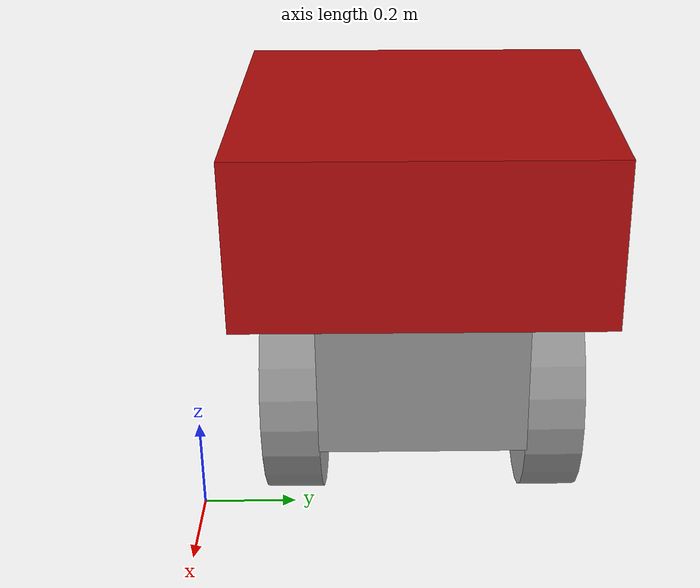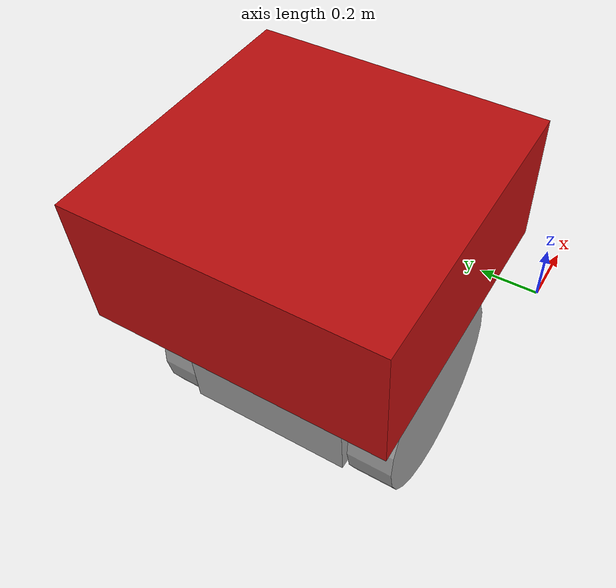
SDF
<?xml version='1.0'?>
<sdf version='1.6'>
  <model name='robo'>
    <link name='left_wheel'>
      <inertial>
        <mass>0.139839</mass>
        <inertia>
          <ixx>0.00337426</ixx>
          <ixy>0</ixy>
          <ixz>0</ixz>
          <iyy>0.00337426</iyy>
          <iyz>0</iyz>
          <izz>0.00629276</izz>
        </inertia>
        <pose frame=''>0 0 0 0 -0 0</pose>
      </inertial>
      <pose frame=''>-0.540003 0.170784 0.027273 1.5707 -0 0</pose>
      <gravity>1</gravity>
      <self_collide>0</self_collide>
      <kinematic>0</kinematic>
      <enable_wind>0</enable_wind>
      <visual name='visual'>
        <pose frame=''>0 0 0 0 -0 0</pose>
        <geometry>
          <cylinder>
            <radius>0.3</radius>
            <length>0.13984</length>
          </cylinder>
        </geometry>
        <material>
          <lighting>1</lighting>
          <script>
            <uri>file://media/materials/scripts/gazebo.material</uri>
            <name>Gazebo/Grey</name>
          </script>
          <shader type='pixel'>
            <normal_map>__default__</normal_map>
          </shader>
          <ambient>0 0 0 1</ambient>
          <diffuse>0.7 0.7 0.7 1</diffuse>
          <specular>0.01 0.01 0.01 1</specular>
          <emissive>0 0 0 1</emissive>
        </material>
        <transparency>0</transparency>
        <cast_shadows>1</cast_shadows>
      </visual>
      <collision name='collision'>
        <laser_retro>0</laser_retro>
        <max_contacts>10</max_contacts>
        <pose frame=''>0 0 0 0 -0 0</pose>
        <geometry>
          <cylinder>
            <radius>0.3</radius>
            <length>0.13984</length>
          </cylinder>
        </geometry>
        <surface>
          <friction>
            <ode>
              <mu>1</mu>
              <mu2>1</mu2>
              <fdir1>0 0 0</fdir1>
              <slip1>0</slip1>
              <slip2>0</slip2>
            </ode>
            <torsional>
              <coefficient>1</coefficient>
              <patch_radius>0</patch_radius>
              <surface_radius>0</surface_radius>
              <use_patch_radius>1</use_patch_radius>
              <ode>
                <slip>0</slip>
              </ode>
            </torsional>
          </friction>
          <bounce>
            <restitution_coefficient>0</restitution_coefficient>
            <threshold>1e+06</threshold>
          </bounce>
          <contact>
            <collide_without_contact>0</collide_without_contact>
            <collide_without_contact_bitmask>1</collide_without_contact_bitmask>
            <collide_bitmask>1</collide_bitmask>
            <ode>
              <soft_cfm>0</soft_cfm>
              <soft_erp>0.2</soft_erp>
              <kp>1e+13</kp>
              <kd>1</kd>
              <max_vel>0.01</max_vel>
              <min_depth>0</min_depth>
            </ode>
            <bullet>
              <split_impulse>1</split_impulse>
              <split_impulse_penetration_threshold>-0.01</split_impulse_penetration_threshold>
              <soft_cfm>0</soft_cfm>
              <soft_erp>0.2</soft_erp>
              <kp>1e+13</kp>
              <kd>1</kd>
            </bullet>
          </contact>
        </surface>
      </collision>
    </link>
    <link name='body'>
      <inertial>
        <mass>0.0977333</mass>
        <inertia>
          <ixx>0.0034523</ixx>
          <ixy>0</ixy>
          <ixz>0</ixz>
          <iyy>0.00486474</iyy>
          <iyz>0</iyz>
          <izz>0.00546961</izz>
        </inertia>
        <pose frame=''>0 0 0 0 -0 0</pose>
      </inertial>
      <pose frame=''>-0.540003 0.490271 0.194467 0 -0 0</pose>
      <gravity>1</gravity>
      <self_collide>0</self_collide>
      <kinematic>0</kinematic>
      <enable_wind>0</enable_wind>
      <visual name='visual'>
        <pose frame=''>0 0 0 0 -0 0</pose>
        <geometry>
          <box>
            <size>0.65 0.499076 0.418101</size>
          </box>
        </geometry>
        <material>
          <lighting>1</lighting>
          <script>
            <uri>file://media/materials/scripts/gazebo.material</uri>
            <name>Gazebo/Grey</name>
          </script>
          <shader type='pixel'>
            <normal_map>__default__</normal_map>
          </shader>
          <ambient>0.5 0.5 0.5 1</ambient>
          <diffuse>0.7 0.7 0.7 1</diffuse>
          <specular>0.01 0.01 0.01 1</specular>
          <emissive>0 0 0 1</emissive>
        </material>
        <transparency>0</transparency>
        <cast_shadows>1</cast_shadows>
      </visual>
      <collision name='collision'>
        <laser_retro>0</laser_retro>
        <max_contacts>10</max_contacts>
        <pose frame=''>0 0 0 0 -0 0</pose>
        <geometry>
          <box>
            <size>0.65 0.499076 0.418101</size>
          </box>
        </geometry>
        <surface>
          <friction>
            <ode>
              <mu>1</mu>
              <mu2>1</mu2>
              <fdir1>0 0 0</fdir1>
              <slip1>0</slip1>
              <slip2>0</slip2>
            </ode>
            <torsional>
              <coefficient>1</coefficient>
              <patch_radius>0</patch_radius>
              <surface_radius>0</surface_radius>
              <use_patch_radius>1</use_patch_radius>
              <ode>
                <slip>0</slip>
              </ode>
            </torsional>
          </friction>
          <bounce>
            <restitution_coefficient>0</restitution_coefficient>
            <threshold>1e+06</threshold>
          </bounce>
          <contact>
            <collide_without_contact>0</collide_without_contact>
            <collide_without_contact_bitmask>1</collide_without_contact_bitmask>
            <collide_bitmask>1</collide_bitmask>
            <ode>
              <soft_cfm>0</soft_cfm>
              <soft_erp>0.2</soft_erp>
              <kp>1e+13</kp>
              <kd>1</kd>
              <max_vel>0.01</max_vel>
              <min_depth>0</min_depth>
            </ode>
            <bullet>
              <split_impulse>1</split_impulse>
              <split_impulse_penetration_threshold>-0.01</split_impulse_penetration_threshold>
              <soft_cfm>0</soft_cfm>
              <soft_erp>0.2</soft_erp>
              <kp>1e+13</kp>
              <kd>1</kd>
            </bullet>
          </contact>
        </surface>
      </collision>
    </link>
    <link name='head'>
      <inertial>
        <mass>0.232242</mass>
        <inertia>
          <ixx>0.0165183</ixx>
          <ixy>0</ixy>
          <ixz>0</ixz>
          <iyy>0.0159662</iyy>
          <iyz>0</iyz>
          <izz>0.0286809</izz>
        </inertia>
        <pose frame=''>0 0 0 0 -0 0</pose>
      </inertial>
      <pose frame=''>-0.540003 0.490271 0.560255 0 -0 0</pose>
      <self_collide>0</self_collide>
      <enable_wind>0</enable_wind>
      <kinematic>0</kinematic>
      <visual name='visual'>
        <pose frame=''>0 0 0 0 -0 0</pose>
        <geometry>
          <box>
            <size>0.852475 0.869044 0.4</size>
          </box>
        </geometry>
        <material>
          <lighting>1</lighting>
          <script>
            <uri>file://media/materials/scripts/gazebo.material</uri>
            <name>Gazebo/Grey</name>
          </script>
          <ambient>0.745098 0.05098 0.05098 1</ambient>
          <shader type='pixel'/>
        </material>
        <transparency>0</transparency>
        <cast_shadows>1</cast_shadows>
      </visual>
      <collision name='collision'>
        <laser_retro>0</laser_retro>
        <max_contacts>10</max_contacts>
        <pose frame=''>0 0 0 0 -0 0</pose>
        <geometry>
          <box>
            <size>0.852475 0.869044 0.313476</size>
          </box>
        </geometry>
        <surface>
          <friction>
            <ode>
              <mu>1</mu>
              <mu2>1</mu2>
              <fdir1>0 0 0</fdir1>
              <slip1>0</slip1>
              <slip2>0</slip2>
            </ode>
            <torsional>
              <coefficient>1</coefficient>
              <patch_radius>0</patch_radius>
              <surface_radius>0</surface_radius>
              <use_patch_radius>1</use_patch_radius>
              <ode>
                <slip>0</slip>
              </ode>
            </torsional>
          </friction>
          <bounce>
            <restitution_coefficient>0</restitution_coefficient>
            <threshold>1e+06</threshold>
          </bounce>
          <contact>
            <collide_without_contact>0</collide_without_contact>
            <collide_without_contact_bitmask>1</collide_without_contact_bitmask>
            <collide_bitmask>1</collide_bitmask>
            <ode>
              <soft_cfm>0</soft_cfm>
              <soft_erp>0.2</soft_erp>
              <kp>1e+13</kp>
              <kd>1</kd>
              <max_vel>0.01</max_vel>
              <min_depth>0</min_depth>
            </ode>
            <bullet>
              <split_impulse>1</split_impulse>
              <split_impulse_penetration_threshold>-0.01</split_impulse_penetration_threshold>
              <soft_cfm>0</soft_cfm>
              <soft_erp>0.2</soft_erp>
              <kp>1e+13</kp>
              <kd>1</kd>
            </bullet>
          </contact>
        </surface>
      </collision>
    </link>
    <link name='right_wheel'>
      <inertial>
        <mass>0.139839</mass>
        <inertia>
          <ixx>0.00337426</ixx>
          <ixy>0</ixy>
          <ixz>0</ixz>
          <iyy>0.00337426</iyy>
          <iyz>0</iyz>
          <izz>0.00629276</izz>
        </inertia>
        <pose frame=''>0 0 0 0 -0 0</pose>
      </inertial>
      <pose frame=''>-0.540003 0.809758 0.027273 1.5707 -0 0</pose>
      <gravity>1</gravity>
      <self_collide>0</self_collide>
      <kinematic>0</kinematic>
      <enable_wind>0</enable_wind>
      <visual name='visual'>
        <pose frame=''>0 0 0 0 -0 0</pose>
        <geometry>
          <cylinder>
            <radius>0.3</radius>
            <length>0.13984</length>
          </cylinder>
        </geometry>
        <material>
          <lighting>1</lighting>
          <script>
            <uri>file://media/materials/scripts/gazebo.material</uri>
            <name>Gazebo/Grey</name>
          </script>
          <shader type='pixel'>
            <normal_map>__default__</normal_map>
          </shader>
          <ambient>0 0 0 1</ambient>
          <diffuse>0.7 0.7 0.7 1</diffuse>
          <specular>0.01 0.01 0.01 1</specular>
          <emissive>0 0 0 1</emissive>
        </material>
        <transparency>0</transparency>
        <cast_shadows>1</cast_shadows>
      </visual>
      <collision name='collision'>
        <laser_retro>0</laser_retro>
        <max_contacts>10</max_contacts>
        <pose frame=''>0 0 0 0 -0 0</pose>
        <geometry>
          <cylinder>
            <radius>0.3</radius>
            <length>0.13984</length>
          </cylinder>
        </geometry>
        <surface>
          <friction>
            <ode>
              <mu>1</mu>
              <mu2>1</mu2>
              <fdir1>0 0 0</fdir1>
              <slip1>0</slip1>
              <slip2>0</slip2>
            </ode>
            <torsional>
              <coefficient>1</coefficient>
              <patch_radius>0</patch_radius>
              <surface_radius>0</surface_radius>
              <use_patch_radius>1</use_patch_radius>
              <ode>
                <slip>0</slip>
              </ode>
            </torsional>
          </friction>
          <bounce>
            <restitution_coefficient>0</restitution_coefficient>
            <threshold>1e+06</threshold>
          </bounce>
          <contact>
            <collide_without_contact>0</collide_without_contact>
            <collide_without_contact_bitmask>1</collide_without_contact_bitmask>
            <collide_bitmask>1</collide_bitmask>
            <ode>
              <soft_cfm>0</soft_cfm>
              <soft_erp>0.2</soft_erp>
              <kp>1e+13</kp>
              <kd>1</kd>
              <max_vel>0.01</max_vel>
              <min_depth>0</min_depth>
            </ode>
            <bullet>
              <split_impulse>1</split_impulse>
              <split_impulse_penetration_threshold>-0.01</split_impulse_penetration_threshold>
              <soft_cfm>0</soft_cfm>
              <soft_erp>0.2</soft_erp>
              <kp>1e+13</kp>
              <kd>1</kd>
            </bullet>
          </contact>
        </surface>
      </collision>
    </link>
    <joint name='body_JOINT_left_wheel' type='revolute'>
      <parent>body</parent>
      <child>left_wheel</child>
      <pose frame=''>0 0 0 0 -0 0</pose>
      <axis>
        <xyz>1 0 0</xyz>
        <use_parent_model_frame>0</use_parent_model_frame>
        <limit>
          <lower>-1.79769e+308</lower>
          <upper>1.79769e+308</upper>
          <effort>-1</effort>
          <velocity>-1</velocity>
        </limit>
        <dynamics>
          <spring_reference>0</spring_reference>
          <spring_stiffness>0</spring_stiffness>
          <damping>0</damping>
          <friction>0</friction>
        </dynamics>
      </axis>
      <physics>
        <ode>
          <limit>
            <cfm>0</cfm>
            <erp>0.2</erp>
          </limit>
          <suspension>
            <cfm>0</cfm>
            <erp>0.2</erp>
          </suspension>
        </ode>
      </physics>
    </joint>
    <joint name='body_JOINT_right_wheel' type='revolute'>
      <parent>body</parent>
      <child>right_wheel</child>
      <pose frame=''>0 0 0 0 -0 0</pose>
      <axis>
        <xyz>1 0 0</xyz>
        <use_parent_model_frame>0</use_parent_model_frame>
        <limit>
          <lower>-1.79769e+308</lower>
          <upper>1.79769e+308</upper>
          <effort>-1</effort>
          <velocity>-1</velocity>
        </limit>
        <dynamics>
          <spring_reference>0</spring_reference>
          <spring_stiffness>0</spring_stiffness>
          <damping>0</damping>
          <friction>0</friction>
        </dynamics>
      </axis>
      <physics>
        <ode>
          <limit>
            <cfm>0</cfm>
            <erp>0.2</erp>
          </limit>
          <suspension>
            <cfm>0</cfm>
            <erp>0.2</erp>
          </suspension>
        </ode>
      </physics>
    </joint>
    <joint name='body_head' type='fixed'>
      <parent>body</parent>
      <child>head</child>
      <pose frame=''>0 0 0 0 -0 0</pose>
      <physics>
        <ode>
          <limit>
            <cfm>0</cfm>
            <erp>0.2</erp>
          </limit>
          <suspension>
            <cfm>0</cfm>
            <erp>0.2</erp>
          </suspension>
        </ode>
      </physics>
    </joint>
    <static>0</static>
    <allow_auto_disable>1</allow_auto_disable>
  </model>
</sdf>
